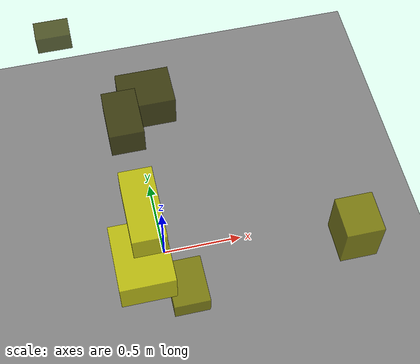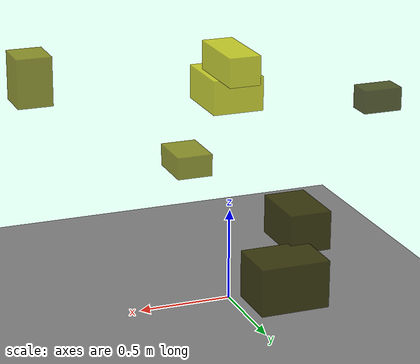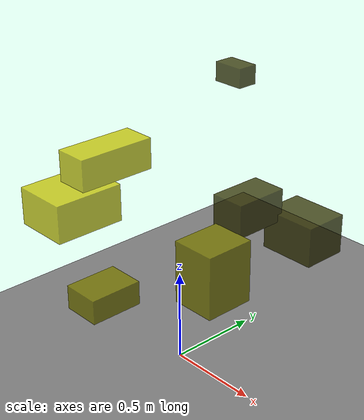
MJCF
<?xml version="1.0"?>
<mujoco model="obstacle_scene">
  <compiler angle="radian" coordinate="local"/>
  <option timestep="0.001" gravity="0 0 -9.81"/>

  <asset>
    <material name="obstacle_mat" rgba="0.8 0.8 0.0 0.8"/>
    <material name="ground_mat" rgba="0.5 0.5 0.5 1"/>
  </asset>

  <worldbody>
    <!-- Ground plane -->
    <geom name="ground" type="plane" size="3 3 0.1" material="ground_mat"/>

    <!-- Obstacles -->
    <body name="obstacle_0" pos="0.068705 0.875168 0.472844">
      <geom name="obs_0" type="box" size="0.171657 0.133816 0.118169" rgba="0.2 0.2 0.0 0.8"/>
    </body>
    <body name="obstacle_1" pos="0.893906 -0.622837 1.145131">
      <geom name="obs_1" type="box" size="0.095975 0.107140 0.134361" rgba="0.5 0.5 0.0 0.8"/>
    </body>
    <body name="obstacle_2" pos="-0.183468 -0.514928 1.012232">
      <geom name="obs_2" type="box" size="0.143523 0.180937 0.095381" rgba="0.8 0.8 0.0 0.8"/>
    </body>
    <body name="obstacle_3" pos="-0.110807 0.610160 0.642762">
      <geom name="obs_3" type="box" size="0.104818 0.163411 0.098056" rgba="0.2 0.2 0.0 0.8"/>
    </body>
    <body name="obstacle_4" pos="0.045735 -0.524418 0.617576">
      <geom name="obs_4" type="box" size="0.099287 0.136128 0.062089" rgba="0.5 0.5 0.0 0.8"/>
    </body>
    <body name="obstacle_5" pos="-0.137192 -0.337190 1.204214">
      <geom name="obs_5" type="box" size="0.087226 0.203628 0.079939" rgba="0.8 0.8 0.0 0.8"/>
    </body>
    <body name="obstacle_6" pos="-0.423403 0.805899 1.303503">
      <geom name="obs_6" type="box" size="0.094713 0.060751 0.055780" rgba="0.2 0.2 0.0 0.8"/>
    </body>
  </worldbody>
</mujoco>
